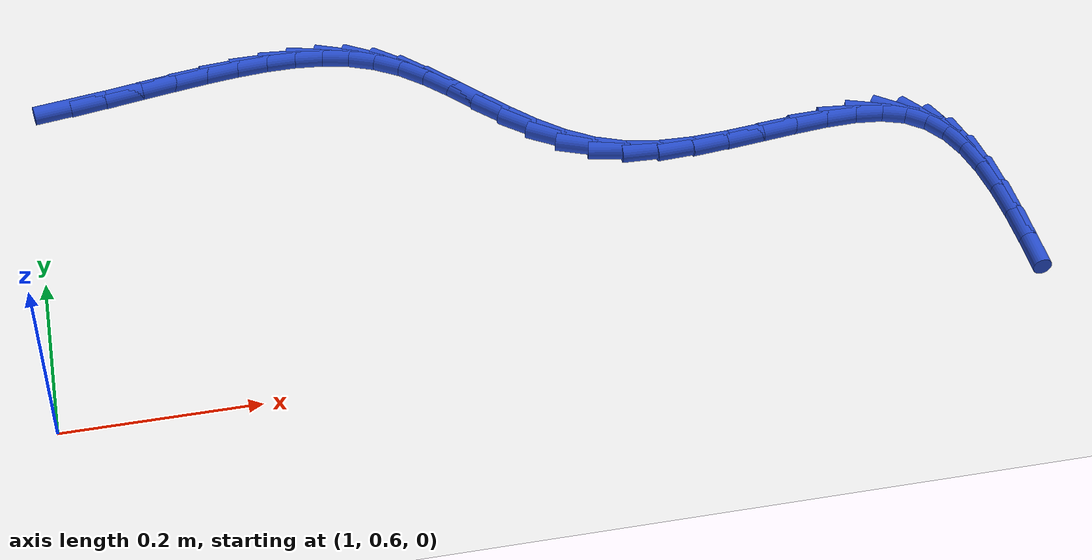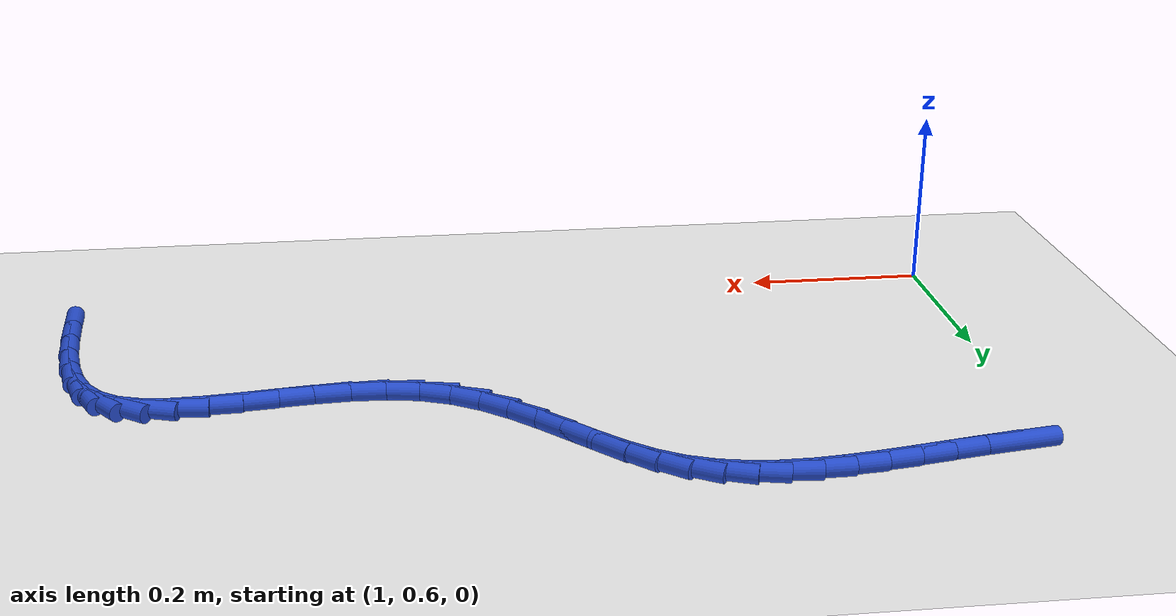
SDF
<sdf version="1.6">
 <world name="default">
  <model name="ground_plane">
   <static>1</static>
   <link name="link">
    <collision name="collision">
     <geometry><plane><normal>0 0 1</normal><size>100 100</size></plane></geometry>
     <surface><friction><ode><mu>100</mu><mu2>50</mu2></ode></friction></surface>
    </collision>
    <visual name="visual">
     <cast_shadows>0</cast_shadows>
     <geometry><plane><normal>0 0 1</normal><size>100 100</size></plane></geometry>
     <material>
      <script><uri>file://media/materials/scripts/gazebo.material</uri><name>Gazebo/WhiteGlow</name></script>
     </material>
    </visual>
   </link>
  </model>
  <model name="line">
   <link name="link_53">
    <pose>1.042227471189779 1.0517233148984595 0.01 0 1.57 0.14980049710011215</pose>
    <collision name="collision">
     <geometry><cylinder><radius>0.01</radius><length>0.08</length></cylinder></geometry>
    </collision>
    <visual name="visual">
     <material>
      <script><name>Gazebo/Blue</name><uri>file://media/materials/scripts/gazebo.material</uri></script>
     </material>
     <geometry><cylinder><radius>0.01</radius><length>0.08</length></cylinder></geometry>
    </visual>
   </link>
   <link name="link_54">
    <pose>1.0812000555044328 1.057605492424545 0.01 0 1.57 0.1706942739636232</pose>
    <collision name="collision">
     <geometry><cylinder><radius>0.01</radius><length>0.08</length></cylinder></geometry>
    </collision>
    <visual name="visual">
     <material>
      <script><name>Gazebo/Blue</name><uri>file://media/materials/scripts/gazebo.material</uri></script>
     </material>
     <geometry><cylinder><radius>0.01</radius><length>0.08</length></cylinder></geometry>
    </visual>
   </link>
   <link name="link_55">
    <pose>1.1191340480670742 1.0641442368948526 0.01 0 1.57 0.17636240588154645</pose>
    <collision name="collision">
     <geometry><cylinder><radius>0.01</radius><length>0.08</length></cylinder></geometry>
    </collision>
    <visual name="visual">
     <material>
      <script><name>Gazebo/Blue</name><uri>file://media/materials/scripts/gazebo.material</uri></script>
     </material>
     <geometry><cylinder><radius>0.01</radius><length>0.08</length></cylinder></geometry>
    </visual>
   </link>
   <link name="link_56">
    <pose>1.1559849887121985 1.070711588697717 0.01 0 1.57 0.16553254162809372</pose>
    <collision name="collision">
     <geometry><cylinder><radius>0.01</radius><length>0.08</length></cylinder></geometry>
    </collision>
    <visual name="visual">
     <material>
      <script><name>Gazebo/Blue</name><uri>file://media/materials/scripts/gazebo.material</uri></script>
     </material>
     <geometry><cylinder><radius>0.01</radius><length>0.08</length></cylinder></geometry>
    </visual>
   </link>
   <link name="link_57">
    <pose>1.1917084172743004 1.0766795882214741 0.01 0 1.57 0.13635518921580084</pose>
    <collision name="collision">
     <geometry><cylinder><radius>0.01</radius><length>0.08</length></cylinder></geometry>
    </collision>
    <visual name="visual">
     <material>
      <script><name>Gazebo/Blue</name><uri>file://media/materials/scripts/gazebo.material</uri></script>
     </material>
     <geometry><cylinder><radius>0.01</radius><length>0.08</length></cylinder></geometry>
    </visual>
   </link>
   <link name="link_58">
    <pose>1.2262598735878751 1.08142027585446 0.01 0 1.57 0.08634288738757968</pose>
    <collision name="collision">
     <geometry><cylinder><radius>0.01</radius><length>0.08</length></cylinder></geometry>
    </collision>
    <visual name="visual">
     <material>
      <script><name>Gazebo/Blue</name><uri>file://media/materials/scripts/gazebo.material</uri></script>
     </material>
     <geometry><cylinder><radius>0.01</radius><length>0.08</length></cylinder></geometry>
    </visual>
   </link>
   <link name="link_59">
    <pose>1.2595948974874176 1.0843056919850103 0.01 0 1.57 0.012538576199997879</pose>
    <collision name="collision">
     <geometry><cylinder><radius>0.01</radius><length>0.08</length></cylinder></geometry>
    </collision>
    <visual name="visual">
     <material>
      <script><name>Gazebo/Blue</name><uri>file://media/materials/scripts/gazebo.material</uri></script>
     </material>
     <geometry><cylinder><radius>0.01</radius><length>0.08</length></cylinder></geometry>
    </visual>
   </link>
   <link name="link_60">
    <pose>1.2916690288074235 1.0847078770014613 0.01 0 1.57 -0.08781753367430056</pose>
    <collision name="collision">
     <geometry><cylinder><radius>0.01</radius><length>0.08</length></cylinder></geometry>
    </collision>
    <visual name="visual">
     <material>
      <script><name>Gazebo/Blue</name><uri>file://media/materials/scripts/gazebo.material</uri></script>
     </material>
     <geometry><cylinder><radius>0.01</radius><length>0.08</length></cylinder></geometry>
    </visual>
   </link>
   <link name="link_61">
    <pose>1.3224378073823875 1.0819988712921487 0.01 0 1.57 -0.2157715016408034</pose>
    <collision name="collision">
     <geometry><cylinder><radius>0.01</radius><length>0.08</length></cylinder></geometry>
    </collision>
    <visual name="visual">
     <material>
      <script><name>Gazebo/Blue</name><uri>file://media/materials/scripts/gazebo.material</uri></script>
     </material>
     <geometry><cylinder><radius>0.01</radius><length>0.08</length></cylinder></geometry>
    </visual>
   </link>
   <link name="link_62">
    <pose>1.3518567730468045 1.0755507152454085 0.01 0 1.57 -0.36830910587126237</pose>
    <collision name="collision">
     <geometry><cylinder><radius>0.01</radius><length>0.08</length></cylinder></geometry>
    </collision>
    <visual name="visual">
     <material>
      <script><name>Gazebo/Blue</name><uri>file://media/materials/scripts/gazebo.material</uri></script>
     </material>
     <geometry><cylinder><radius>0.01</radius><length>0.08</length></cylinder></geometry>
    </visual>
   </link>
   <link name="link_63">
    <pose>1.3798814656351701 1.0647354492495755 0.01 0 1.57 -0.5361514295140511</pose>
    <collision name="collision">
     <geometry><cylinder><radius>0.01</radius><length>0.08</length></cylinder></geometry>
    </collision>
    <visual name="visual">
     <material>
      <script><name>Gazebo/Blue</name><uri>file://media/materials/scripts/gazebo.material</uri></script>
     </material>
     <geometry><cylinder><radius>0.01</radius><length>0.08</length></cylinder></geometry>
    </visual>
   </link>
   <link name="link_64">
    <pose>1.4064705342691812 1.0489359530508424 0.01 0 1.57 -0.6835282698975131</pose>
    <collision name="collision">
     <geometry><cylinder><radius>0.01</radius><length>0.08</length></cylinder></geometry>
    </collision>
    <visual name="visual">
     <material>
      <script><name>Gazebo/Blue</name><uri>file://media/materials/scripts/gazebo.material</uri></script>
     </material>
     <geometry><cylinder><radius>0.01</radius><length>0.08</length></cylinder></geometry>
    </visual>
   </link>
   <link name="link_65">
    <pose>1.4318027592517677 1.0283025107852333 0.01 0 1.57 -0.7738669091790529</pose>
    <collision name="collision">
     <geometry><cylinder><radius>0.01</radius><length>0.08</length></cylinder></geometry>
    </collision>
    <visual name="visual">
     <material>
      <script><name>Gazebo/Blue</name><uri>file://media/materials/scripts/gazebo.material</uri></script>
     </material>
     <geometry><cylinder><radius>0.01</radius><length>0.08</length></cylinder></geometry>
    </visual>
   </link>
   <link name="link_66">
    <pose>1.4564189722497611 1.0042475622018368 0.01 0 1.57 -0.8145786219902336</pose>
    <collision name="collision">
     <geometry><cylinder><radius>0.01</radius><length>0.08</length></cylinder></geometry>
    </collision>
    <visual name="visual">
     <material>
      <script><name>Gazebo/Blue</name><uri>file://media/materials/scripts/gazebo.material</uri></script>
     </material>
     <geometry><cylinder><radius>0.01</radius><length>0.08</length></cylinder></geometry>
    </visual>
   </link>
   <link name="link_67">
    <pose>1.4808937200480372 0.9783010821006533 0.01 0 1.57 -0.8127306843363291</pose>
    <collision name="collision">
     <geometry><cylinder><radius>0.01</radius><length>0.08</length></cylinder></geometry>
    </collision>
    <visual name="visual">
     <material>
      <script><name>Gazebo/Blue</name><uri>file://media/materials/scripts/gazebo.material</uri></script>
     </material>
     <geometry><cylinder><radius>0.01</radius><length>0.08</length></cylinder></geometry>
    </visual>
   </link>
   <link name="link_68">
    <pose>1.5058015494314747 0.9519930452816853 0.01 0 1.57 -0.770203213964623</pose>
    <collision name="collision">
     <geometry><cylinder><radius>0.01</radius><length>0.08</length></cylinder></geometry>
    </collision>
    <visual name="visual">
     <material>
      <script><name>Gazebo/Blue</name><uri>file://media/materials/scripts/gazebo.material</uri></script>
     </material>
     <geometry><cylinder><radius>0.01</radius><length>0.08</length></cylinder></geometry>
    </visual>
   </link>
   <link name="link_69">
    <pose>1.5317170071849522 0.9268534265449336 0.01 0 1.57 -0.6844901062890572</pose>
    <collision name="collision">
     <geometry><cylinder><radius>0.01</radius><length>0.08</length></cylinder></geometry>
    </collision>
    <visual name="visual">
     <material>
      <script><name>Gazebo/Blue</name><uri>file://media/materials/scripts/gazebo.material</uri></script>
     </material>
     <geometry><cylinder><radius>0.01</radius><length>0.08</length></cylinder></geometry>
    </visual>
   </link>
   <link name="link_70">
    <pose>1.5592146400933464 0.9044122006904004 0.01 0 1.57 -0.5507745719869069</pose>
    <collision name="collision">
     <geometry><cylinder><radius>0.01</radius><length>0.08</length></cylinder></geometry>
    </collision>
    <visual name="visual">
     <material>
      <script><name>Gazebo/Blue</name><uri>file://media/materials/scripts/gazebo.material</uri></script>
     </material>
     <geometry><cylinder><radius>0.01</radius><length>0.08</length></cylinder></geometry>
    </visual>
   </link>
   <link name="link_71">
    <pose>1.5888689949415364 0.8861993425180869 0.01 0 1.57 -0.3674892081311739</pose>
    <collision name="collision">
     <geometry><cylinder><radius>0.01</radius><length>0.08</length></cylinder></geometry>
    </collision>
    <visual name="visual">
     <material>
      <script><name>Gazebo/Blue</name><uri>file://media/materials/scripts/gazebo.material</uri></script>
     </material>
     <geometry><cylinder><radius>0.01</radius><length>0.08</length></cylinder></geometry>
    </visual>
   </link>
   <link name="link_72">
    <pose>1.6212491632657005 0.8737337076962128 0.01 0 1.57 -0.17479285689291793</pose>
    <collision name="collision">
     <geometry><cylinder><radius>0.01</radius><length>0.08</length></cylinder></geometry>
    </collision>
    <visual name="visual">
     <material>
      <script><name>Gazebo/Blue</name><uri>file://media/materials/scripts/gazebo.material</uri></script>
     </material>
     <geometry><cylinder><radius>0.01</radius><length>0.08</length></cylinder></geometry>
    </visual>
   </link>
   <link name="link_73">
    <pose>1.6564273681421782 0.8675214123850711 0.01 0 1.57 -0.033953131991459135</pose>
    <collision name="collision">
     <geometry><cylinder><radius>0.01</radius><length>0.08</length></cylinder></geometry>
    </collision>
    <visual name="visual">
     <material>
      <script><name>Gazebo/Blue</name><uri>file://media/materials/scripts/gazebo.material</uri></script>
     </material>
     <geometry><cylinder><radius>0.01</radius><length>0.08</length></cylinder></geometry>
    </visual>
   </link>
   <link name="link_74">
    <pose>1.6935881230223038 0.8662592033011823 0.01 0 1.57 0.05740015635863599</pose>
    <collision name="collision">
     <geometry><cylinder><radius>0.01</radius><length>0.08</length></cylinder></geometry>
    </collision>
    <visual name="visual">
     <material>
      <script><name>Gazebo/Blue</name><uri>file://media/materials/scripts/gazebo.material</uri></script>
     </material>
     <geometry><cylinder><radius>0.01</radius><length>0.08</length></cylinder></geometry>
    </visual>
   </link>
   <link name="link_75">
    <pose>1.7318239666912238 0.8684563602846068 0.01 0 1.57 0.10805215866762681</pose>
    <collision name="collision">
     <geometry><cylinder><radius>0.01</radius><length>0.08</length></cylinder></geometry>
    </collision>
    <visual name="visual">
     <material>
      <script><name>Gazebo/Blue</name><uri>file://media/materials/scripts/gazebo.material</uri></script>
     </material>
     <geometry><cylinder><radius>0.01</radius><length>0.08</length></cylinder></geometry>
    </visual>
   </link>
   <link name="link_76">
    <pose>1.7702274379340859 0.8726221631754058 0.01 0 1.57 0.12267562451456339</pose>
    <collision name="collision">
     <geometry><cylinder><radius>0.01</radius><length>0.08</length></cylinder></geometry>
    </collision>
    <visual name="visual">
     <material>
      <script><name>Gazebo/Blue</name><uri>file://media/materials/scripts/gazebo.material</uri></script>
     </material>
     <geometry><cylinder><radius>0.01</radius><length>0.08</length></cylinder></geometry>
    </visual>
   </link>
   <link name="link_77">
    <pose>1.8078910755360351 0.8772658918136395 0.01 0 1.57 0.10047405103115307</pose>
    <collision name="collision">
     <geometry><cylinder><radius>0.01</radius><length>0.08</length></cylinder></geometry>
    </collision>
    <visual name="visual">
     <material>
      <script><name>Gazebo/Blue</name><uri>file://media/materials/scripts/gazebo.material</uri></script>
     </material>
     <geometry><cylinder><radius>0.01</radius><length>0.08</length></cylinder></geometry>
    </visual>
   </link>
   <link name="link_78">
    <pose>1.8439074182822188 0.8808968260393691 0.01 0 1.57 0.03368021167997193</pose>
    <collision name="collision">
     <geometry><cylinder><radius>0.01</radius><length>0.08</length></cylinder></geometry>
    </collision>
    <visual name="visual">
     <material>
      <script><name>Gazebo/Blue</name><uri>file://media/materials/scripts/gazebo.material</uri></script>
     </material>
     <geometry><cylinder><radius>0.01</radius><length>0.08</length></cylinder></geometry>
    </visual>
   </link>
   <link name="link_79">
    <pose>1.877369004957784 0.8820242456926554 0.01 0 1.57 -0.09527319654171025</pose>
    <collision name="collision">
     <geometry><cylinder><radius>0.01</radius><length>0.08</length></cylinder></geometry>
    </collision>
    <visual name="visual">
     <material>
      <script><name>Gazebo/Blue</name><uri>file://media/materials/scripts/gazebo.material</uri></script>
     </material>
     <geometry><cylinder><radius>0.01</radius><length>0.08</length></cylinder></geometry>
    </visual>
   </link>
   <link name="link_80">
    <pose>1.9073683743478758 0.8791574306135586 0.01 0 1.57 -0.3150123258118781</pose>
    <collision name="collision">
     <geometry><cylinder><radius>0.01</radius><length>0.08</length></cylinder></geometry>
    </collision>
    <visual name="visual">
     <material>
      <script><name>Gazebo/Blue</name><uri>file://media/materials/scripts/gazebo.material</uri></script>
     </material>
     <geometry><cylinder><radius>0.01</radius><length>0.08</length></cylinder></geometry>
    </visual>
   </link>
   <link name="link_81">
    <pose>1.9329980652376415 0.8708056606421397 0.01 0 1.57 -0.6276441172366608</pose>
    <collision name="collision">
     <geometry><cylinder><radius>0.01</radius><length>0.08</length></cylinder></geometry>
    </collision>
    <visual name="visual">
     <material>
      <script><name>Gazebo/Blue</name><uri>file://media/materials/scripts/gazebo.material</uri></script>
     </material>
     <geometry><cylinder><radius>0.01</radius><length>0.08</length></cylinder></geometry>
    </visual>
   </link>
   <link name="link_82">
    <pose>1.953603747276751 0.855855978271142 0.01 0 1.57 -0.9238707753283545</pose>
    <collision name="collision">
     <geometry><cylinder><radius>0.01</radius><length>0.08</length></cylinder></geometry>
    </collision>
    <visual name="visual">
     <material>
      <script><name>Gazebo/Blue</name><uri>file://media/materials/scripts/gazebo.material</uri></script>
     </material>
     <geometry><cylinder><radius>0.01</radius><length>0.08</length></cylinder></geometry>
    </visual>
   </link>
   <link name="link_83">
    <pose>1.969560403234466 0.8347315328415676 0.01 0 1.57 -1.1471370626614341</pose>
    <collision name="collision">
     <geometry><cylinder><radius>0.01</radius><length>0.08</length></cylinder></geometry>
    </collision>
    <visual name="visual">
     <material>
      <script><name>Gazebo/Blue</name><uri>file://media/materials/scripts/gazebo.material</uri></script>
     </material>
     <geometry><cylinder><radius>0.01</radius><length>0.08</length></cylinder></geometry>
    </visual>
   </link>
   <link name="link_84">
    <pose>1.9815046109428123 0.8082458679872039 0.01 0 1.57 -1.3014067844544501</pose>
    <collision name="collision">
     <geometry><cylinder><radius>0.01</radius><length>0.08</length></cylinder></geometry>
    </collision>
    <visual name="visual">
     <material>
      <script><name>Gazebo/Blue</name><uri>file://media/materials/scripts/gazebo.material</uri></script>
     </material>
     <geometry><cylinder><radius>0.01</radius><length>0.08</length></cylinder></geometry>
    </visual>
   </link>
   <link name="link_85">
    <pose>1.9900729482762098 0.7772125274051065 0.01 0 1.57 -1.4046832667005207</pose>
    <collision name="collision">
     <geometry><cylinder><radius>0.01</radius><length>0.08</length></cylinder></geometry>
    </collision>
    <visual name="visual">
     <material>
      <script><name>Gazebo/Blue</name><uri>file://media/materials/scripts/gazebo.material</uri></script>
     </material>
     <geometry><cylinder><radius>0.01</radius><length>0.08</length></cylinder></geometry>
    </visual>
   </link>
   <link name="link_86">
    <pose>1.9959019931090765 0.7424450547923308 0.01 0 1.57 -1.4722436778712604</pose>
    <collision name="collision">
     <geometry><cylinder><radius>0.01</radius><length>0.08</length></cylinder></geometry>
    </collision>
    <visual name="visual">
     <material>
      <script><name>Gazebo/Blue</name><uri>file://media/materials/scripts/gazebo.material</uri></script>
     </material>
     <geometry><cylinder><radius>0.01</radius><length>0.08</length></cylinder></geometry>
    </visual>
   </link>
   <link name="link_87">
    <pose>1.9996283233158325 0.7047569938459319 0.01 0 1.57 -1.514061513928751</pose>
    <collision name="collision">
     <geometry><cylinder><radius>0.01</radius><length>0.08</length></cylinder></geometry>
    </collision>
    <visual name="visual">
     <material>
      <script><name>Gazebo/Blue</name><uri>file://media/materials/scripts/gazebo.material</uri></script>
     </material>
     <geometry><cylinder><radius>0.01</radius><length>0.08</length></cylinder></geometry>
    </visual>
   </link>
   <link name="link_88">
    <pose>2.001888516770897 0.6649618882629648 0.01 0 1.57 -1.535992107485634</pose>
    <collision name="collision">
     <geometry><cylinder><radius>0.01</radius><length>0.08</length></cylinder></geometry>
    </collision>
    <visual name="visual">
     <material>
      <script><name>Gazebo/Blue</name><uri>file://media/materials/scripts/gazebo.material</uri></script>
     </material>
     <geometry><cylinder><radius>0.01</radius><length>0.08</length></cylinder></geometry>
    </visual>
   </link>
  </model>
 </world>
</sdf>
